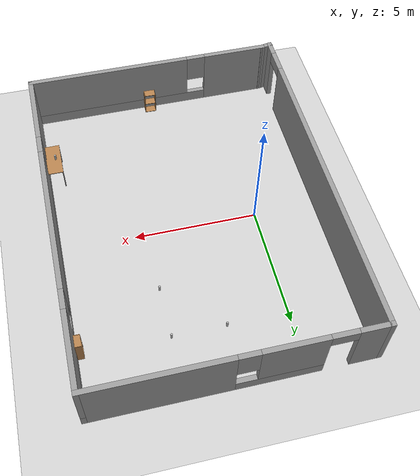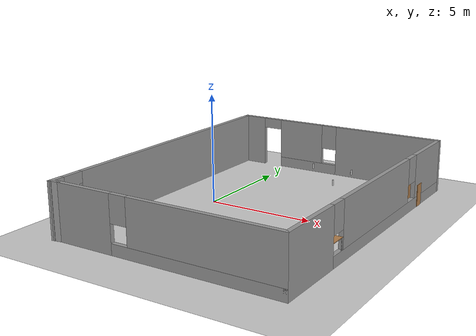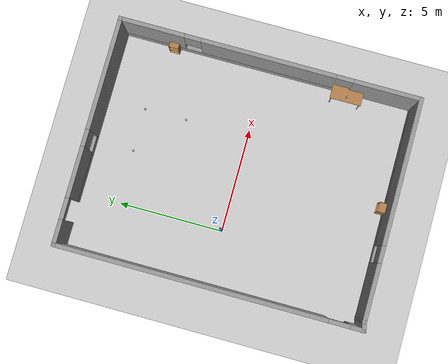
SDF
<sdf version="1.4">
 <world name="default">
  <light name="sun" type="directional">
   <pose>0 0 10 0 -0 0</pose>
   <diffuse>0.8 0.8 0.8 1</diffuse>
   <specular>0.2 0.2 0.2 1</specular>
   <attenuation>
    <range>1000</range>
    <constant>0.9</constant>
    <linear>0.01</linear>
    <quadratic>0.001</quadratic>
   </attenuation>
   <direction>-0.5 0.1 -0.9</direction>
  </light>
  <model name="ground_plane">
   <static>1</static>
   <link name="link">
    <collision name="collision">
     <geometry><plane><normal>0 0 1</normal><size>100 100</size></plane></geometry>
     <surface><friction><ode><mu>100</mu><mu2>50</mu2></ode></friction></surface>
    </collision>
    <visual name="visual">
     <cast_shadows>0</cast_shadows>
     <geometry><plane><normal>0 0 1</normal><size>100 100</size></plane></geometry>
     <material>
      <script><uri>file://media/materials/scripts/gazebo.material</uri><name>Gazebo/Grey</name></script>
     </material>
    </visual>
    <velocity_decay><linear>0</linear><angular>0</angular></velocity_decay>
   </link>
  </model>
  <physics type="ode">
   <max_step_size>0.001</max_step_size>
   <real_time_factor>1</real_time_factor>
   <real_time_update_rate>1000</real_time_update_rate>
   <gravity>0 0 -9.8</gravity>
  </physics>
  <scene><ambient>0.4 0.4 0.4 1</ambient><background>0.7 0.7 0.7 1</background><shadows>1</shadows></scene>
  <spherical_coordinates>
   <surface_model>EARTH_WGS84</surface_model>
   <latitude_deg>0</latitude_deg>
   <longitude_deg>0</longitude_deg>
   <elevation>0</elevation>
   <heading_deg>0</heading_deg>
  </spherical_coordinates>
  <model name="MyOffice">
   <link name="Wall_3">
    <pose>2.12492 -7.36216 0 0 -0 0</pose>
    <visual name="Wall_3_Visual_0">
     <pose>-3.88015 0 1.25 0 -0 0</pose>
     <geometry><box><size>2.77639 0.2 2.5</size></box></geometry>
     <material>
      <script><uri>file://media/materials/scripts/gazebo.material</uri><name>Gazebo/Grey</name></script>
     </material>
    </visual>
    <collision name="Wall_3_Collision_0">
     <geometry><box><size>2.77639 0.2 2.5</size></box></geometry>
     <pose>-3.88015 0 1.25 0 -0 0</pose>
    </collision>
    <visual name="Wall_3_Visual_1">
     <pose>1.3882 0 0.25 0 -0 0</pose>
     <geometry><box><size>7.76029 0.2 0.5</size></box></geometry>
     <material>
      <script><uri>file://media/materials/scripts/gazebo.material</uri><name>Gazebo/Grey</name></script>
     </material>
    </visual>
    <collision name="Wall_3_Collision_1">
     <geometry><box><size>7.76029 0.2 0.5</size></box></geometry>
     <pose>1.3882 0 0.25 0 -0 0</pose>
    </collision>
    <visual name="Wall_3_Visual_2">
     <pose>1.7882 0 1.5 0 -0 0</pose>
     <geometry><box><size>6.96029 0.2 2</size></box></geometry>
     <material>
      <script><uri>file://media/materials/scripts/gazebo.material</uri><name>Gazebo/Grey</name></script>
     </material>
    </visual>
    <collision name="Wall_3_Collision_2">
     <geometry><box><size>6.96029 0.2 2</size></box></geometry>
     <pose>1.7882 0 1.5 0 -0 0</pose>
    </collision>
    <visual name="Wall_3_Visual_3">
     <pose>-2.09195 0 1.9 0 -0 0</pose>
     <geometry><box><size>0.8 0.2 1.2</size></box></geometry>
     <material>
      <script><uri>file://media/materials/scripts/gazebo.material</uri><name>Gazebo/Grey</name></script>
     </material>
    </visual>
    <collision name="Wall_3_Collision_3">
     <geometry><box><size>0.8 0.2 1.2</size></box></geometry>
     <pose>-2.09195 0 1.9 0 -0 0</pose>
    </collision>
    <velocity_decay><linear>0</linear><angular>0</angular></velocity_decay>
   </link>
   <link name="Wall_4">
    <pose>7.29326 -0.255689 0 0 -0 1.5708</pose>
    <visual name="Wall_4_Visual_0">
     <pose>-5.57216 0 1.25 0 -0 0</pose>
     <geometry><box><size>3.26862 0.2 2.5</size></box></geometry>
     <material>
      <script><uri>file://media/materials/scripts/gazebo.material</uri><name>Gazebo/Grey</name></script>
     </material>
    </visual>
    <collision name="Wall_4_Collision_0">
     <geometry><box><size>3.26862 0.2 2.5</size></box></geometry>
     <pose>-5.57216 0 1.25 0 -0 0</pose>
    </collision>
    <visual name="Wall_4_Visual_1">
     <pose>1.63431 0 0.25 0 -0 0</pose>
     <geometry><box><size>11.1443 0.2 0.5</size></box></geometry>
     <material>
      <script><uri>file://media/materials/scripts/gazebo.material</uri><name>Gazebo/Grey</name></script>
     </material>
    </visual>
    <collision name="Wall_4_Collision_1">
     <geometry><box><size>11.1443 0.2 0.5</size></box></geometry>
     <pose>1.63431 0 0.25 0 -0 0</pose>
    </collision>
    <visual name="Wall_4_Visual_2">
     <pose>0.061528 0 1.5 0 -0 0</pose>
     <geometry><box><size>6.39876 0.2 2</size></box></geometry>
     <material>
      <script><uri>file://media/materials/scripts/gazebo.material</uri><name>Gazebo/Grey</name></script>
     </material>
    </visual>
    <collision name="Wall_4_Collision_2">
     <geometry><box><size>6.39876 0.2 2</size></box></geometry>
     <pose>0.061528 0 1.5 0 -0 0</pose>
    </collision>
    <visual name="Wall_4_Visual_3">
     <pose>5.63369 0 1.5 0 -0 0</pose>
     <geometry><box><size>3.14556 0.2 2</size></box></geometry>
     <material>
      <script><uri>file://media/materials/scripts/gazebo.material</uri><name>Gazebo/Grey</name></script>
     </material>
    </visual>
    <collision name="Wall_4_Collision_3">
     <geometry><box><size>3.14556 0.2 2</size></box></geometry>
     <pose>5.63369 0 1.5 0 -0 0</pose>
    </collision>
    <visual name="Wall_4_Visual_4">
     <pose>-3.53785 0 1.9 0 -0 0</pose>
     <geometry><box><size>0.8 0.2 1.2</size></box></geometry>
     <material>
      <script><uri>file://media/materials/scripts/gazebo.material</uri><name>Gazebo/Grey</name></script>
     </material>
    </visual>
    <collision name="Wall_4_Collision_4">
     <geometry><box><size>0.8 0.2 1.2</size></box></geometry>
     <pose>-3.53785 0 1.9 0 -0 0</pose>
    </collision>
    <visual name="Wall_4_Visual_5">
     <pose>3.66091 0 1.9 0 -0 0</pose>
     <geometry><box><size>0.8 0.2 1.2</size></box></geometry>
     <material>
      <script><uri>file://media/materials/scripts/gazebo.material</uri><name>Gazebo/Grey</name></script>
     </material>
    </visual>
    <collision name="Wall_4_Collision_5">
     <geometry><box><size>0.8 0.2 1.2</size></box></geometry>
     <pose>3.66091 0 1.9 0 -0 0</pose>
    </collision>
    <velocity_decay><linear>0</linear><angular>0</angular></velocity_decay>
   </link>
   <link name="Wall_5">
    <pose>1.94033 6.85078 0 0 -0 3.14159</pose>
    <visual name="Wall_5_Visual_0">
     <pose>-2.74188 0 1.25 0 -0 0</pose>
     <geometry><box><size>5.42209 0.2 2.5</size></box></geometry>
     <material>
      <script><uri>file://media/materials/scripts/gazebo.material</uri><name>Gazebo/Grey</name></script>
     </material>
    </visual>
    <collision name="Wall_5_Collision_0">
     <geometry><box><size>5.42209 0.2 2.5</size></box></geometry>
     <pose>-2.74188 0 1.25 0 -0 0</pose>
    </collision>
    <visual name="Wall_5_Visual_1">
     <pose>4.8223 0 1.25 0 -0 0</pose>
     <geometry><box><size>1.26125 0.2 2.5</size></box></geometry>
     <material>
      <script><uri>file://media/materials/scripts/gazebo.material</uri><name>Gazebo/Grey</name></script>
     </material>
    </visual>
    <collision name="Wall_5_Collision_1">
     <geometry><box><size>1.26125 0.2 2.5</size></box></geometry>
     <pose>4.8223 0 1.25 0 -0 0</pose>
    </collision>
    <visual name="Wall_5_Visual_2">
     <pose>1.58042 0 0.25 0 -0 0</pose>
     <geometry><box><size>3.2225 0.2 0.5</size></box></geometry>
     <material>
      <script><uri>file://media/materials/scripts/gazebo.material</uri><name>Gazebo/Grey</name></script>
     </material>
    </visual>
    <collision name="Wall_5_Collision_2">
     <geometry><box><size>3.2225 0.2 0.5</size></box></geometry>
     <pose>1.58042 0 0.25 0 -0 0</pose>
    </collision>
    <visual name="Wall_5_Visual_3">
     <pose>1.98042 0 1.5 0 -0 0</pose>
     <geometry><box><size>2.42251 0.2 2</size></box></geometry>
     <material>
      <script><uri>file://media/materials/scripts/gazebo.material</uri><name>Gazebo/Grey</name></script>
     </material>
    </visual>
    <collision name="Wall_5_Collision_3">
     <geometry><box><size>2.42251 0.2 2</size></box></geometry>
     <pose>1.98042 0 1.5 0 -0 0</pose>
    </collision>
    <visual name="Wall_5_Visual_4">
     <pose>0.369167 0 1.9 0 -0 0</pose>
     <geometry><box><size>0.8 0.2 1.2</size></box></geometry>
     <material>
      <script><uri>file://media/materials/scripts/gazebo.material</uri><name>Gazebo/Grey</name></script>
     </material>
    </visual>
    <collision name="Wall_5_Collision_4">
     <geometry><box><size>0.8 0.2 1.2</size></box></geometry>
     <pose>0.369167 0 1.9 0 -0 0</pose>
    </collision>
    <visual name="Wall_5_Visual_5">
     <pose>3.69167 0 2.25 0 -0 0</pose>
     <geometry><box><size>1 0.2 0.5</size></box></geometry>
     <material>
      <script><uri>file://media/materials/scripts/gazebo.material</uri><name>Gazebo/Grey</name></script>
     </material>
    </visual>
    <collision name="Wall_5_Collision_5">
     <geometry><box><size>1 0.2 0.5</size></box></geometry>
     <pose>3.69167 0 2.25 0 -0 0</pose>
    </collision>
    <velocity_decay><linear>0</linear><angular>0</angular></velocity_decay>
   </link>
   <link name="Wall_6">
    <pose>-3.41259 -0.286453 0 0 0 -1.5708</pose>
    <visual name="Wall_6_Visual_0">
     <pose>-0.853751 0 1.25 0 -0 0</pose>
     <geometry><box><size>12.767 0.2 2.5</size></box></geometry>
     <material>
      <script><uri>file://media/materials/scripts/gazebo.material</uri><name>Gazebo/Grey</name></script>
     </material>
    </visual>
    <collision name="Wall_6_Collision_0">
     <geometry><box><size>12.767 0.2 2.5</size></box></geometry>
     <pose>-0.853751 0 1.25 0 -0 0</pose>
    </collision>
    <visual name="Wall_6_Visual_1">
     <pose>6.88348 0 1.25 0 -0 0</pose>
     <geometry><box><size>0.707502 0.2 2.5</size></box></geometry>
     <material>
      <script><uri>file://media/materials/scripts/gazebo.material</uri><name>Gazebo/Grey</name></script>
     </material>
    </visual>
    <collision name="Wall_6_Collision_1">
     <geometry><box><size>0.707502 0.2 2.5</size></box></geometry>
     <pose>6.88348 0 1.25 0 -0 0</pose>
    </collision>
    <visual name="Wall_6_Visual_2">
     <pose>6.02973 0 2.25 0 -0 0</pose>
     <geometry><box><size>1 0.2 0.5</size></box></geometry>
     <material>
      <script><uri>file://media/materials/scripts/gazebo.material</uri><name>Gazebo/Grey</name></script>
     </material>
    </visual>
    <collision name="Wall_6_Collision_2">
     <geometry><box><size>1 0.2 0.5</size></box></geometry>
     <pose>6.02973 0 2.25 0 -0 0</pose>
    </collision>
    <velocity_decay><linear>0</linear><angular>0</angular></velocity_decay>
   </link>
   <link name="Wall_7">
    <collision name="Wall_7_Collision">
     <geometry><box><size>0.574259 0.2 2.5</size></box></geometry>
     <pose>0 0 1.25 0 -0 0</pose>
    </collision>
    <visual name="Wall_7_Visual">
     <pose>0 0 1.25 0 -0 0</pose>
     <geometry><box><size>0.574259 0.2 2.5</size></box></geometry>
     <material>
      <script><uri>file://media/materials/scripts/gazebo.material</uri><name>Gazebo/Grey</name></script>
     </material>
    </visual>
    <velocity_decay><linear>0</linear><angular>0</angular></velocity_decay>
    <pose>-3.22801 -7.39292 0 0 -0 0.165149</pose>
   </link>
   <static>1</static>
   <pose>0.786524 0.155154 0 0 -0 0</pose>
  </model>
  <model name="cabinet">
   <static>1</static>
   <link name="cabinet_bottom_plate">
    <inertial>
     <pose>0 0 -1 0 -0 0</pose>
     <inertia><ixx>2.05</ixx><ixy>0</ixy><ixz>0</ixz><iyy>2.05</iyy><iyz>0</iyz><izz>2.05</izz></inertia>
     <mass>25</mass>
    </inertial>
    <collision name="cabinet_bottom_plate_geom">
     <pose>0 0 0.01 0 -0 0</pose>
     <geometry><box><size>0.45 0.45 0.02</size></box></geometry>
    </collision>
    <visual name="cabinet_bottom_plate_geom_visual">
     <pose>0 0 0.01 0 -0 0</pose>
     <geometry><box><size>0.45 0.45 0.02</size></box></geometry>
     <material>
      <script><uri>file://media/materials/scripts/gazebo.material</uri><name>Gazebo/Wood</name></script>
     </material>
    </visual>
    <collision name="cabinet_bottom_plate_geom_cabinet_back_plate">
     <pose>0.235 0 0.51 0 -0 0</pose>
     <geometry><box><size>0.02 0.45 1.02</size></box></geometry>
    </collision>
    <visual name="cabinet_bottom_plate_geom_cabinet_back_plate_visual">
     <pose>0.235 0 0.51 0 -0 0</pose>
     <geometry><box><size>0.02 0.45 1.02</size></box></geometry>
     <material>
      <script><uri>file://media/materials/scripts/gazebo.material</uri><name>Gazebo/Wood</name></script>
     </material>
    </visual>
    <collision name="cabinet_bottom_plate_geom_cabinet_left_plate">
     <pose>0 0.235 0.51 0 -0 0</pose>
     <geometry><box><size>0.45 0.02 1.02</size></box></geometry>
    </collision>
    <visual name="cabinet_bottom_plate_geom_cabinet_left_plate_visual">
     <pose>0 0.235 0.51 0 -0 0</pose>
     <geometry><box><size>0.45 0.02 1.02</size></box></geometry>
     <material>
      <script><uri>file://media/materials/scripts/gazebo.material</uri><name>Gazebo/Wood</name></script>
     </material>
    </visual>
    <collision name="cabinet_bottom_plate_geom_cabinet_middle_plate">
     <pose>0 0 0.51 0 -0 0</pose>
     <geometry><box><size>0.45 0.45 0.02</size></box></geometry>
    </collision>
    <visual name="cabinet_bottom_plate_geom_cabinet_middle_plate_visual">
     <pose>0 0 0.51 0 -0 0</pose>
     <geometry><box><size>0.45 0.45 0.02</size></box></geometry>
     <material>
      <script><uri>file://media/materials/scripts/gazebo.material</uri><name>Gazebo/Wood</name></script>
     </material>
    </visual>
    <collision name="cabinet_bottom_plate_geom_cabinet_right_plate">
     <pose>0 -0.235 0.51 0 -0 0</pose>
     <geometry><box><size>0.45 0.02 1.02</size></box></geometry>
    </collision>
    <visual name="cabinet_bottom_plate_geom_cabinet_right_plate_visual">
     <pose>0 -0.235 0.51 0 -0 0</pose>
     <geometry><box><size>0.45 0.02 1.02</size></box></geometry>
     <material>
      <script><uri>file://media/materials/scripts/gazebo.material</uri><name>Gazebo/Wood</name></script>
     </material>
    </visual>
    <collision name="cabinet_bottom_plate_geom_cabinet_top_plate">
     <pose>0 0 1.01 0 -0 0</pose>
     <geometry><box><size>0.45 0.45 0.02</size></box></geometry>
    </collision>
    <visual name="cabinet_bottom_plate_geom_cabinet_top_plate_visual">
     <pose>0 0 1.01 0 -0 0</pose>
     <geometry><box><size>0.45 0.45 0.02</size></box></geometry>
     <material>
      <script><uri>file://media/materials/scripts/gazebo.material</uri><name>Gazebo/Wood</name></script>
     </material>
    </visual>
    <velocity_decay><linear>0</linear><angular>0</angular></velocity_decay>
   </link>
   <pose>7.95723 4.50072 0 0 -0 0</pose>
  </model>
  <model name="cabinet_0">
   <static>1</static>
   <link name="cabinet_bottom_plate">
    <inertial>
     <pose>0 0 -1 0 -0 0</pose>
     <inertia><ixx>2.05</ixx><ixy>0</ixy><ixz>0</ixz><iyy>2.05</iyy><iyz>0</iyz><izz>2.05</izz></inertia>
     <mass>25</mass>
    </inertial>
    <collision name="cabinet_bottom_plate_geom">
     <pose>0 0 0.01 0 -0 0</pose>
     <geometry><box><size>0.45 0.45 0.02</size></box></geometry>
    </collision>
    <visual name="cabinet_bottom_plate_geom_visual">
     <pose>0 0 0.01 0 -0 0</pose>
     <geometry><box><size>0.45 0.45 0.02</size></box></geometry>
     <material>
      <script><uri>file://media/materials/scripts/gazebo.material</uri><name>Gazebo/Wood</name></script>
     </material>
    </visual>
    <collision name="cabinet_bottom_plate_geom_cabinet_back_plate">
     <pose>0.235 0 0.51 0 -0 0</pose>
     <geometry><box><size>0.02 0.45 1.02</size></box></geometry>
    </collision>
    <visual name="cabinet_bottom_plate_geom_cabinet_back_plate_visual">
     <pose>0.235 0 0.51 0 -0 0</pose>
     <geometry><box><size>0.02 0.45 1.02</size></box></geometry>
     <material>
      <script><uri>file://media/materials/scripts/gazebo.material</uri><name>Gazebo/Wood</name></script>
     </material>
    </visual>
    <collision name="cabinet_bottom_plate_geom_cabinet_left_plate">
     <pose>0 0.235 0.51 0 -0 0</pose>
     <geometry><box><size>0.45 0.02 1.02</size></box></geometry>
    </collision>
    <visual name="cabinet_bottom_plate_geom_cabinet_left_plate_visual">
     <pose>0 0.235 0.51 0 -0 0</pose>
     <geometry><box><size>0.45 0.02 1.02</size></box></geometry>
     <material>
      <script><uri>file://media/materials/scripts/gazebo.material</uri><name>Gazebo/Wood</name></script>
     </material>
    </visual>
    <collision name="cabinet_bottom_plate_geom_cabinet_middle_plate">
     <pose>0 0 0.51 0 -0 0</pose>
     <geometry><box><size>0.45 0.45 0.02</size></box></geometry>
    </collision>
    <visual name="cabinet_bottom_plate_geom_cabinet_middle_plate_visual">
     <pose>0 0 0.51 0 -0 0</pose>
     <geometry><box><size>0.45 0.45 0.02</size></box></geometry>
     <material>
      <script><uri>file://media/materials/scripts/gazebo.material</uri><name>Gazebo/Wood</name></script>
     </material>
    </visual>
    <collision name="cabinet_bottom_plate_geom_cabinet_right_plate">
     <pose>0 -0.235 0.51 0 -0 0</pose>
     <geometry><box><size>0.45 0.02 1.02</size></box></geometry>
    </collision>
    <visual name="cabinet_bottom_plate_geom_cabinet_right_plate_visual">
     <pose>0 -0.235 0.51 0 -0 0</pose>
     <geometry><box><size>0.45 0.02 1.02</size></box></geometry>
     <material>
      <script><uri>file://media/materials/scripts/gazebo.material</uri><name>Gazebo/Wood</name></script>
     </material>
    </visual>
    <collision name="cabinet_bottom_plate_geom_cabinet_top_plate">
     <pose>0 0 1.01 0 -0 0</pose>
     <geometry><box><size>0.45 0.45 0.02</size></box></geometry>
    </collision>
    <visual name="cabinet_bottom_plate_geom_cabinet_top_plate_visual">
     <pose>0 0 1.01 0 -0 0</pose>
     <geometry><box><size>0.45 0.45 0.02</size></box></geometry>
     <material>
      <script><uri>file://media/materials/scripts/gazebo.material</uri><name>Gazebo/Wood</name></script>
     </material>
    </visual>
    <velocity_decay><linear>0</linear><angular>0</angular></velocity_decay>
   </link>
   <pose>3 -7 0 0 0 -1.59652</pose>
  </model>
  <model name="table">
   <static>1</static>
   <link name="link">
    <collision name="surface">
     <pose>0 0 1 0 -0 0</pose>
     <geometry><box><size>1.5 0.8 0.03</size></box></geometry>
     <surface><friction><ode><mu>0.6</mu><mu2>0.6</mu2></ode></friction></surface>
    </collision>
    <visual name="visual1">
     <pose>0 0 1 0 -0 0</pose>
     <geometry><box><size>1.5 0.8 0.03</size></box></geometry>
     <material>
      <script><uri>file://media/materials/scripts/gazebo.material</uri><name>Gazebo/Wood</name></script>
     </material>
    </visual>
    <collision name="front_left_leg">
     <pose>0.68 0.38 0.5 0 -0 0</pose>
     <geometry><cylinder><radius>0.02</radius><length>1</length></cylinder></geometry>
    </collision>
    <visual name="front_left_leg">
     <pose>0.68 0.38 0.5 0 -0 0</pose>
     <geometry><cylinder><radius>0.02</radius><length>1</length></cylinder></geometry>
     <material>
      <script><uri>file://media/materials/scripts/gazebo.material</uri><name>Gazebo/Grey</name></script>
     </material>
    </visual>
    <collision name="front_right_leg">
     <pose>0.68 -0.38 0.5 0 -0 0</pose>
     <geometry><cylinder><radius>0.02</radius><length>1</length></cylinder></geometry>
    </collision>
    <visual name="front_right_leg">
     <pose>0.68 -0.38 0.5 0 -0 0</pose>
     <geometry><cylinder><radius>0.02</radius><length>1</length></cylinder></geometry>
     <material>
      <script><uri>file://media/materials/scripts/gazebo.material</uri><name>Gazebo/Grey</name></script>
     </material>
    </visual>
    <collision name="back_right_leg">
     <pose>-0.68 -0.38 0.5 0 -0 0</pose>
     <geometry><cylinder><radius>0.02</radius><length>1</length></cylinder></geometry>
    </collision>
    <visual name="back_right_leg">
     <pose>-0.68 -0.38 0.5 0 -0 0</pose>
     <geometry><cylinder><radius>0.02</radius><length>1</length></cylinder></geometry>
     <material>
      <script><uri>file://media/materials/scripts/gazebo.material</uri><name>Gazebo/Grey</name></script>
     </material>
    </visual>
    <collision name="back_left_leg">
     <pose>-0.68 0.38 0.5 0 -0 0</pose>
     <geometry><cylinder><radius>0.02</radius><length>1</length></cylinder></geometry>
    </collision>
    <visual name="back_left_leg">
     <pose>-0.68 0.38 0.5 0 -0 0</pose>
     <geometry><cylinder><radius>0.02</radius><length>1</length></cylinder></geometry>
     <material>
      <script><uri>file://media/materials/scripts/gazebo.material</uri><name>Gazebo/Grey</name></script>
     </material>
    </visual>
    <velocity_decay><linear>0</linear><angular>0</angular></velocity_decay>
   </link>
   <pose>7.77137 -3.99831 0 0 0 -1.56861</pose>
  </model>
  <model name="beer">
   <link name="link">
    <pose>0 0 0.115 0 -0 0</pose>
    <inertial>
     <mass>0.39</mass>
     <inertia><ixx>0.00058</ixx><ixy>0</ixy><ixz>0</ixz><iyy>0.00058</iyy><iyz>0</iyz><izz>0.00019</izz></inertia>
    </inertial>
    <collision name="collision">
     <geometry><cylinder><radius>0.04</radius><length>0.25</length></cylinder></geometry>
     <surface><friction><ode><mu>1500000</mu><mu2>1500000</mu2></ode></friction></surface>
    </collision>
    <visual name="visual">
     <geometry><cylinder><radius>0.04</radius><length>0.25</length></cylinder></geometry>
     <material>
      <script>
       <uri>model://beer/materials/scripts</uri>
       <uri>model://beer/materials/textures</uri>
       <name>Beer/Diffuse</name>
      </script>
     </material>
    </visual>
    <velocity_decay><linear>0</linear><angular>0</angular></velocity_decay>
   </link>
   <pose>7.5957 -3.99996 1.015 7e-06 5.7e-05 -0.000418</pose>
   <static>0</static>
  </model>
  <model name="beer_1">
   <link name="link">
    <pose>0 0 0.115 0 -0 0</pose>
    <inertial>
     <mass>0.39</mass>
     <inertia><ixx>0.00058</ixx><ixy>0</ixy><ixz>0</ixz><iyy>0.00058</iyy><iyz>0</iyz><izz>0.00019</izz></inertia>
    </inertial>
    <collision name="collision">
     <geometry><cylinder><radius>0.04</radius><length>0.25</length></cylinder></geometry>
     <surface><friction><ode><mu>1500000</mu><mu2>1500000</mu2></ode></friction></surface>
    </collision>
    <visual name="visual">
     <geometry><cylinder><radius>0.04</radius><length>0.25</length></cylinder></geometry>
     <material>
      <script>
       <uri>model://beer/materials/scripts</uri>
       <uri>model://beer/materials/textures</uri>
       <name>Beer/Diffuse</name>
      </script>
     </material>
    </visual>
    <velocity_decay><linear>0</linear><angular>0</angular></velocity_decay>
   </link>
   <pose>4.56808 5.00001 0.774991 -1.2e-05 -3e-06 0.002587</pose>
   <static>0</static>
  </model>
  <model name="beer_3">
   <link name="link">
    <pose>0 0 0.115 0 -0 0</pose>
    <inertial>
     <mass>0.39</mass>
     <inertia><ixx>0.00058</ixx><ixy>0</ixy><ixz>0</ixz><iyy>0.00058</iyy><iyz>0</iyz><izz>0.00019</izz></inertia>
    </inertial>
    <collision name="collision">
     <geometry><cylinder><radius>0.04</radius><length>0.25</length></cylinder></geometry>
     <surface><friction><ode><mu>1500000</mu><mu2>1500000</mu2></ode></friction></surface>
    </collision>
    <visual name="visual">
     <geometry><cylinder><radius>0.04</radius><length>0.25</length></cylinder></geometry>
     <material>
      <script>
       <uri>model://beer/materials/scripts</uri>
       <uri>model://beer/materials/textures</uri>
       <name>Beer/Diffuse</name>
      </script>
     </material>
    </visual>
    <velocity_decay><linear>0</linear><angular>0</angular></velocity_decay>
   </link>
   <pose>4.5914 3.00338 0.77499 1e-06 -2.7e-05 0.003369</pose>
   <static>0</static>
  </model>
  <model name="beer_4">
   <link name="link">
    <pose>0 0 0.115 0 -0 0</pose>
    <inertial>
     <mass>0.39</mass>
     <inertia><ixx>0.00058</ixx><ixy>0</ixy><ixz>0</ixz><iyy>0.00058</iyy><iyz>0</iyz><izz>0.00019</izz></inertia>
    </inertial>
    <collision name="collision">
     <geometry><cylinder><radius>0.04</radius><length>0.25</length></cylinder></geometry>
     <surface><friction><ode><mu>1500000</mu><mu2>1500000</mu2></ode></friction></surface>
    </collision>
    <visual name="visual">
     <geometry><cylinder><radius>0.04</radius><length>0.25</length></cylinder></geometry>
     <material>
      <script>
       <uri>model://beer/materials/scripts</uri>
       <uri>model://beer/materials/textures</uri>
       <name>Beer/Diffuse</name>
      </script>
     </material>
    </visual>
    <velocity_decay><linear>0</linear><angular>0</angular></velocity_decay>
   </link>
   <pose>2.51669 5 0.775001 3e-05 -3e-06 0.007693</pose>
   <static>0</static>
  </model>
 </world>
</sdf>
